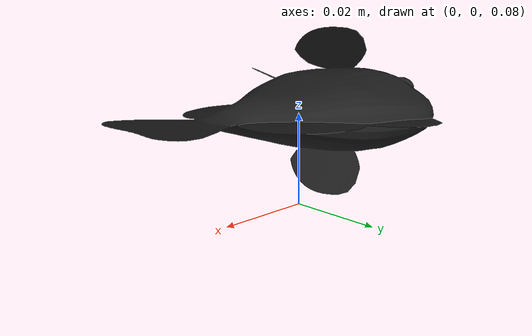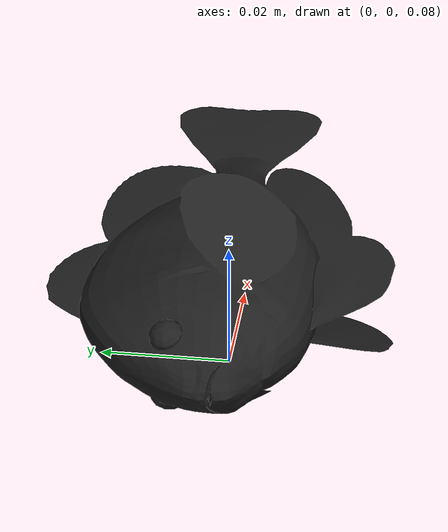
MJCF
<mujoco model="fish_black">
    <asset>
        <mesh name="fish_black_mesh" file="asset/fish_black.obj" scale="2 2 2"/>
        <texture name="fish_black_tex" type="2d" file="asset/fish_black.png"/>
        <material name="fish_black_mat" texture="fish_black_tex" specular="0.3"/>
    </asset>
    <worldbody>
        <body name="fish_black_obj" pos="0 0 0.1" euler="0 90 0">
        <freejoint/>
        <geom type="mesh" mesh="fish_black_mesh" material="fish_black_mat" mass="0.2" friction="3 10.0 10.0" solimp="0.95 0.99 0.001" solref="0.015 1" margin="0.005" group="2"/>
    </body>
    </worldbody>
</mujoco>
